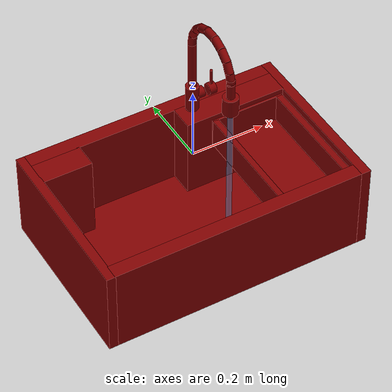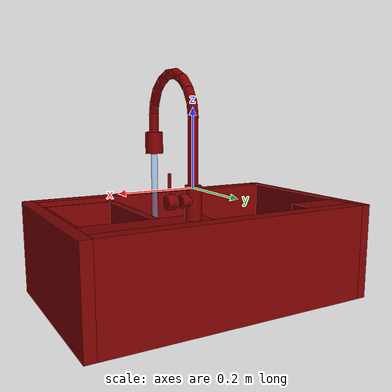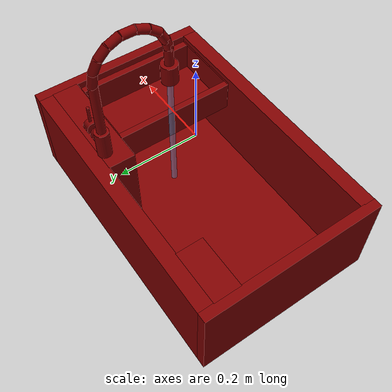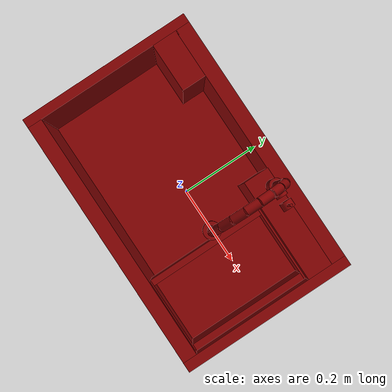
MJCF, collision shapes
<?xml version='1.0' encoding='UTF-8'?>
<mujoco model="model">
  <option timestep="0.002" gravity="0.0 0.0 -9.81"/>
  <compiler angle="radian"/>
  <asset>
    <mesh file="visuals/handle.obj" name="handle_vis"/>
    <mesh file="visuals/Body001.obj" name="Body001_vis"/>
    <mesh file="visuals/Container001.obj" name="Container001_vis"/>
    <mesh file="visuals/spout.obj" name="spout_vis"/>
    <texture file="visuals/T_BC001.png" name="Body001_material" type="2d"/>
    <material name="Body001_material" rgba="1 1 1 1.0" texture="Body001_material" shininess="0.4472135901451111" specular="1"/>
    <texture file="visuals/T_BC001.png" name="handle_material" type="2d"/>
    <material name="handle_material" rgba="1 1 1 1.0" texture="handle_material" shininess="0.4472135901451111" specular="0.3103448502657381"/>
    <texture file="visuals/T_BC001.png" name="Container001_material" type="2d"/>
    <material name="Container001_material" rgba="1 1 1 1.0" texture="Container001_material" shininess="0.4472135901451111" specular="1"/>
    <texture file="visuals/T_BC001.png" name="spout_material" type="2d"/>
    <material name="spout_material" rgba="1 1 1 1.0" texture="spout_material" shininess="0.4472135901451111" specular="1"/>
  </asset>
  <default>
    <default class="visual">
      <geom conaffinity="0" contype="0" group="1" type="mesh"/>
    </default>
    <default class="collision">
      <geom group="0" rgba="0.5 0 0 0.5" solimp="0.998 0.998 0.001" solref="0.001 2"/>
    </default>
    <default class="spawn">
      <geom group="0" rgba="1 1 1 0.5" contype="0" conaffinity="0"/>
      <site group="0" rgba="1 1 1 0.5"/>
    </default>
    <default class="region">
      <geom group="1" conaffinity="0" contype="0" rgba="0 1 0 0"/>
    </default>
  </default>
  <worldbody>
    <body>
      <body name="object">
        <geom mesh="Body001_vis" type="mesh" solimp="0.998 0.998 0.001" solref="0.001 1" friction="0.95 0.3 0.1" class="visual" material="Body001_material"/>
        <geom type="box" pos="-0.36257818 -0.00000477 -0.16103673" size="0.012418731115758419 0.2399914562702179 0.12224696576595306" quat="1.0 0.0 0.0 0.0" class="collision"/>
        <geom type="box" pos="0.36130128 -0.00000474 -0.16103862" size="0.013692243956029415 0.2399914264678955 0.12224894762039185" quat="1.0 0.0 0.0 0.0" class="collision"/>
        <geom type="box" pos="-0.00126206 -0.22003382 -0.16103675" size="0.35077476501464844 0.019699759781360626 0.12224701046943665" quat="1.0 0.0 0.0 0.0" class="collision"/>
        <geom type="box" pos="-0.00126206 0.21984713 -0.16103673" size="0.35077476501464844 0.020139522850513458 0.12224690616130829" quat="1.0 0.0 0.0 0.0" class="collision"/>
        <geom type="box" pos="-0.28358009 0.16687338 -0.16103678" size="0.0684567540884018 0.03480720520019531 0.12224698066711426" quat="1.0 0.0 0.0 0.0" class="collision"/>
        <geom type="box" pos="-0.00291350 0.00045011 -0.27814154" size="0.35200273990631104 0.2012304663658142 0.005146021023392677" quat="1.0 0.0 0.0 0.0" class="collision"/>
        <geom type="box" pos="0.18582765 0.00045011 -0.28051521" size="0.16326160728931427 0.2012304663658142 0.0027684809174388647" quat="1.0 0.0 0.0 0.0" class="collision"/>
        <geom type="box" pos="0.20498679 0.16687338 -0.16103862" size="0.14454804360866547 0.03480720892548561 0.12224894762039185" quat="1.0 0.0 0.0 0.0" class="collision"/>
        <geom type="cylinder" pos="0.10604001 0.18666950 -0.00048585" size="0.018023207783699036 0.037181321531534195" quat="0.7071067094802856 0.0 0.0 0.7071068286895752" class="collision"/>
        <geom type="cylinder" pos="0.12115074 0.18696728 0.00532106" size="0.0151016591116786 0.016585635021328926" quat="0.4999981224536896 0.5000000596046448 0.500001847743988 0.4999999403953552" class="collision"/>
        <body name="handle">
          <joint axis="1.0 0.0 0.0" pos="0.15760597 0.18595207 0.00524115" limited="true" name="handle_temp_joint" type="hinge" range="-0.7853981633974483 0.7853981633974483" damping="0.5" frictionloss="1" armature="2"/>
          <joint axis="0.0 1.0 0.0" pos="0.15760597 0.18595207 0.00524115" limited="true" name="handle_joint" type="hinge" range="0 0.5" damping="0.5" frictionloss="1" armature="2"/>
          <geom mesh="handle_vis" type="mesh" solimp="0.998 0.998 0.001" solref="0.001 1" friction="0.95 0.3 0.1" class="visual" material="handle_material"/>
          <geom type="cylinder" pos="0.16095441 0.18585499 0.00532106" size="0.016299109905958176 0.010204732418060303" quat="0.4999981224536896 0.5000000596046448 0.500001847743988 0.4999999403953552" class="collision"/>
          <geom name="handle_main" type="cylinder" pos="0.16227840 0.18602799 0.04269097" size="0.0035856820177286863 0.022539718076586723" quat="1.0 0.0 0.0 0.0" class="collision"/>
        </body>
        <body name="Container001">
          <joint axis="0.0 0.0 1.0" pos="0.23764825 -0.03089866 -0.09306772" limited="true" name="Container001_joint" range="0.0 0.1" type="slide" damping="1" frictionloss="1" armature=".01" stiffness="0.05"/>
          <geom mesh="Container001_vis" type="mesh" solimp="0.998 0.998 0.001" solref="0.001 1" friction="0.95 0.3 0.1" class="visual" material="Container001_material"/>
          <geom type="box" pos="0.14149511 -0.03508431 -0.09303337" size="0.008313270285725594 0.16157479584217072 0.041009947657585144" quat="1.0 0.0 0.0 0.0" class="collision"/>
          <geom type="box" pos="0.33321727 -0.03508431 -0.09303337" size="0.009027495980262756 0.16157479584217072 0.041009947657585144" quat="1.0 0.0 0.0 0.0" class="collision"/>
          <geom type="box" pos="0.23759294 0.12764879 -0.09326357" size="0.10413418710231781 0.0027264582458883524 0.041240155696868896" quat="1.0 0.0 0.0 0.0" class="collision"/>
          <geom type="box" pos="0.23759294 -0.19775742 -0.09326357" size="0.10157319158315659 0.0016649627359583974 0.041240155696868896" quat="1.0 0.0 0.0 0.0" class="collision"/>
          <geom type="box" pos="0.23759294 -0.03595386 -0.13282710" size="0.08986037969589233 0.16080370545387268 0.0016766269691288471" quat="1.0 0.0 0.0 0.0" class="collision"/>
        </body>
        <body name="spout">
          <joint axis="0.0 0.0 1.0" pos="0.10616281 0.18621282 0.12998289" limited="true" name="spout_joint" range="-0.7853981633974483 0.7853981633974483" type="hinge" damping="10"/>
          <site type="cylinder" rgba="0.5 0.75 1 0.5" size="0.00759623060002923 0.1894230991601944" pos="0.10621481 -0.00178493 -0.08994808" name="water"/>
          <geom mesh="spout_vis" type="mesh" solimp="0.998 0.998 0.001" solref="0.001 1" friction="0.95 0.3 0.1" class="visual" material="spout_material"/>
          <geom type="cylinder" pos="0.10613459 0.18607470 0.10757708" size="0.011182444170117378 0.07005099207162857" quat="1.0 0.0 0.0 0.0" class="collision"/>
          <geom type="cylinder" pos="0.10613459 -0.00169033 0.17103775" size="0.011182444170117378 0.028290700167417526" quat="1.0 0.0 0.0 0.0" class="collision"/>
          <geom type="cylinder" pos="0.10613459 -0.00169033 0.11762188" size="0.021144689992070198 0.025374850258231163" quat="1.0 0.0 0.0 0.0" class="collision" name="spout_main"/>
          <geom type="cylinder" pos="0.10613459 0.18478824 0.19312628" size="0.011182444170117378 0.01723991520702839" quat="0.9957955479621887 0.09160369634628296 0.0 0.0" class="collision"/>
          <geom type="cylinder" pos="0.10613459 0.17424647 0.22296487" size="0.011182444170117378 0.01723991520702839" quat="0.9664912223815918 0.25669974088668823 0.0 0.0" class="collision"/>
          <geom type="cylinder" pos="0.10613459 0.15334159 0.24958731" size="0.011182444170117378 0.01723991520702839" quat="0.9160729050636292 0.40101173520088196 0.0 0.0" class="collision"/>
          <geom type="cylinder" pos="0.10613459 0.12457505 0.26674001" size="0.011182444170117378 0.01723991520702839" quat="0.8338097333908081 0.5520519614219666 0.0 0.0" class="collision"/>
          <geom type="cylinder" pos="0.10613459 0.09294972 0.27227892" size="0.011182444170117378 0.01723991520702839" quat="0.7075024843215942 0.7067108750343323 0.0 0.0" class="collision"/>
          <geom type="cylinder" pos="0.10613459 0.06071750 0.26691125" size="0.011182444170117378 0.017239917069673538" quat="0.5624226927757263 0.8268498778343201 0.0 0.0" class="collision"/>
          <geom type="cylinder" pos="0.10613459 0.03142486 0.25018290" size="0.011182444170117378 0.01723991520702839" quat="0.4342154860496521 0.9008090496063232 0.0 0.0" class="collision"/>
          <geom type="cylinder" pos="0.10613459 0.01154391 0.22602396" size="0.011182444170117378 0.01723991520702839" quat="0.23668569326400757 0.971586287021637 0.0 0.0" class="collision"/>
          <geom type="cylinder" pos="0.10613459 0.00099717 0.20033954" size="0.011182444170117378 0.017239917069673538" quat="0.10710156708955765 0.99424809217453 0.0 0.0" class="collision"/>
        </body>
        <geom class="region" name="reg_basin" type="box" pos="-0.10603591999999999 -0.03964973 -0.15589355500000002" size="0.23655274999999998 0.15968556 0.116940055"/>
        <geom class="region" name="reg_main" type="box" pos="-1.689999999998637e-06 -4.740000000003075e-06 -0.161036715" size="0.37599523 0.24099146 0.12324695499999999"/>
      </body>
    </body>
  </worldbody>
  <actuator>
    <motor name="handle_joint_actuator" joint="handle_joint" gear="10"/>
    <motor name="handle_temp_joint_actuator" joint="handle_temp_joint" gear="10"/>
    <motor name="Container001_joint_actuator" joint="Container001_joint" gear="10"/>
    <motor name="spout_joint_actuator" joint="spout_joint" gear="10"/>
  </actuator>
</mujoco>
